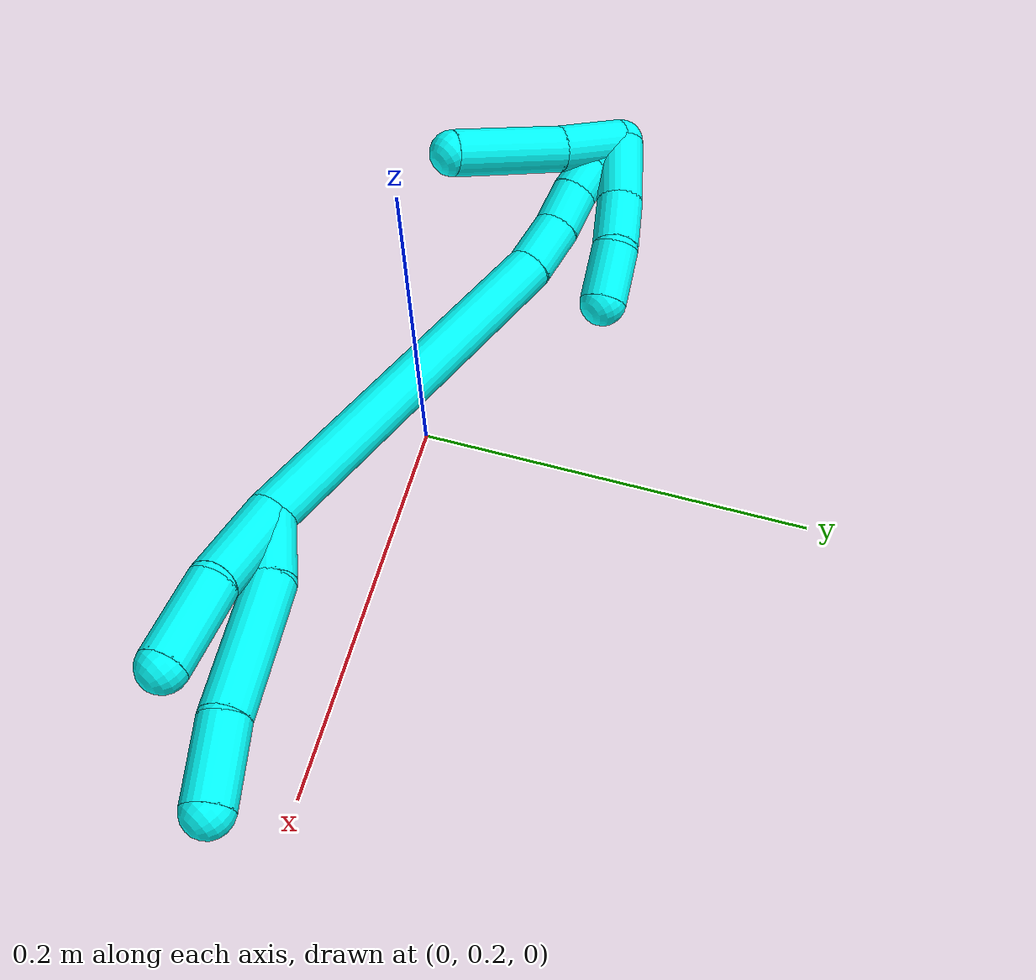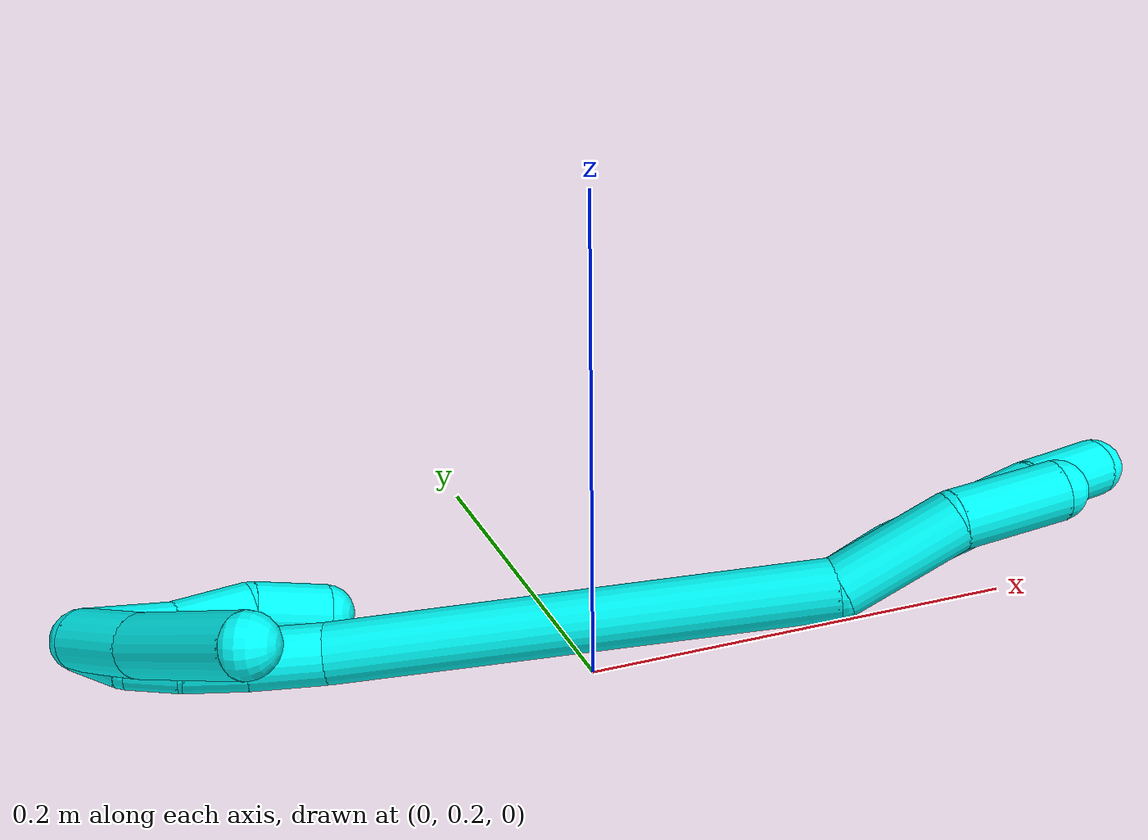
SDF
<sdf version="1.7">
 <world name="default">
  <model name="3">
   <static>0</static>
   <link name="3">
    <collision name="collision-cylinder-e_1_2_8">
     <pose>0.009853 -0.009738 -0.012015 2.46047 0.567235 1.37664</pose>
     <geometry><cylinder><radius>0.0125</radius><length>0.036675</length></cylinder></geometry>
     <surface>
      <friction><ode><mu>1.16</mu><mu2>1.16</mu2><slip1>0</slip1><slip2>0</slip2></ode></friction>
      <contact><ode><kp>1e+06</kp><kd>1</kd><max_vel>0</max_vel><min_depth>0.001</min_depth></ode></contact>
     </surface>
    </collision>
    <visual name="visual-cylinder-e_1_2_8">
     <pose>0.009853 -0.009738 -0.012015 2.46047 0.567235 1.37664</pose>
     <geometry><cylinder><radius>0.0125</radius><length>0.036675</length></cylinder></geometry>
     <material><ambient>0.003922 1 0.996078 1</ambient></material>
    </visual>
    <collision name="collision-cylinder-e_2_8_9">
     <pose>0.031363 -0.035889 -0.0542 2.64337 0.327213 1.15123</pose>
     <geometry><cylinder><radius>0.0125</radius><length>0.072542</length></cylinder></geometry>
     <surface>
      <friction><ode><mu>1.16</mu><mu2>1.16</mu2><slip1>0</slip1><slip2>0</slip2></ode></friction>
      <contact><ode><kp>1e+06</kp><kd>1</kd><max_vel>0</max_vel><min_depth>0.001</min_depth></ode></contact>
     </surface>
    </collision>
    <visual name="visual-cylinder-e_2_8_9">
     <pose>0.031363 -0.035889 -0.0542 2.64337 0.327213 1.15123</pose>
     <geometry><cylinder><radius>0.0125</radius><length>0.072542</length></cylinder></geometry>
     <material><ambient>0.003922 1 0.996078 1</ambient></material>
    </visual>
    <collision name="collision-cylinder-e_3_9_6">
     <pose>0.053083 -0.060146 -0.100279 2.68353 0.51607 1.69456</pose>
     <geometry><cylinder><radius>0.0125</radius><length>0.040783</length></cylinder></geometry>
     <surface>
      <friction><ode><mu>1.16</mu><mu2>1.16</mu2><slip1>0</slip1><slip2>0</slip2></ode></friction>
      <contact><ode><kp>1e+06</kp><kd>1</kd><max_vel>0</max_vel><min_depth>0.001</min_depth></ode></contact>
     </surface>
    </collision>
    <visual name="visual-cylinder-e_3_9_6">
     <pose>0.053083 -0.060146 -0.100279 2.68353 0.51607 1.69456</pose>
     <geometry><cylinder><radius>0.0125</radius><length>0.040783</length></cylinder></geometry>
     <material><ambient>0.003922 1 0.996078 1</ambient></material>
    </visual>
    <collision name="collision-cylinder-e_1_2_10">
     <pose>0.000109 -0.013498 -0.02346 2.61948 0.004041 0.015127</pose>
     <geometry><cylinder><radius>0.0125</radius><length>0.054133</length></cylinder></geometry>
     <surface>
      <friction><ode><mu>1.16</mu><mu2>1.16</mu2><slip1>0</slip1><slip2>0</slip2></ode></friction>
      <contact><ode><kp>1e+06</kp><kd>1</kd><max_vel>0</max_vel><min_depth>0.001</min_depth></ode></contact>
     </surface>
    </collision>
    <visual name="visual-cylinder-e_1_2_10">
     <pose>0.000109 -0.013498 -0.02346 2.61948 0.004041 0.015127</pose>
     <geometry><cylinder><radius>0.0125</radius><length>0.054133</length></cylinder></geometry>
     <material><ambient>0.003922 1 0.996078 1</ambient></material>
    </visual>
    <collision name="collision-cylinder-e_2_10_5">
     <pose>0.005231 -0.034247 -0.068092 2.81167 0.220344 1.17298</pose>
     <geometry><cylinder><radius>0.0125</radius><length>0.045867</length></cylinder></geometry>
     <surface>
      <friction><ode><mu>1.16</mu><mu2>1.16</mu2><slip1>0</slip1><slip2>0</slip2></ode></friction>
      <contact><ode><kp>1e+06</kp><kd>1</kd><max_vel>0</max_vel><min_depth>0.001</min_depth></ode></contact>
     </surface>
    </collision>
    <visual name="visual-cylinder-e_2_10_5">
     <pose>0.005231 -0.034247 -0.068092 2.81167 0.220344 1.17298</pose>
     <geometry><cylinder><radius>0.0125</radius><length>0.045867</length></cylinder></geometry>
     <material><ambient>0.003922 1 0.996078 1</ambient></material>
    </visual>
    <collision name="collision-cylinder-e_1_2_11">
     <pose>-0.003145 0.012503 0.101319 -0.122786 -0.030802 0.001894</pose>
     <geometry><cylinder><radius>0.0125</radius><length>0.204272</length></cylinder></geometry>
     <surface>
      <friction><ode><mu>1.16</mu><mu2>1.16</mu2><slip1>0</slip1><slip2>0</slip2></ode></friction>
      <contact><ode><kp>1e+06</kp><kd>1</kd><max_vel>0</max_vel><min_depth>0.001</min_depth></ode></contact>
     </surface>
    </collision>
    <visual name="visual-cylinder-e_1_2_11">
     <pose>-0.003145 0.012503 0.101319 -0.122786 -0.030802 0.001894</pose>
     <geometry><cylinder><radius>0.0125</radius><length>0.204272</length></cylinder></geometry>
     <material><ambient>0.003922 1 0.996078 1</ambient></material>
    </visual>
    <collision name="collision-cylinder-e_2_11_12">
     <pose>-0.009519 0.02674 0.217326 -0.11744 -0.214892 0.012682</pose>
     <geometry><cylinder><radius>0.0125</radius><length>0.030277</length></cylinder></geometry>
     <surface>
      <friction><ode><mu>1.16</mu><mu2>1.16</mu2><slip1>0</slip1><slip2>0</slip2></ode></friction>
      <contact><ode><kp>1e+06</kp><kd>1</kd><max_vel>0</max_vel><min_depth>0.001</min_depth></ode></contact>
     </surface>
    </collision>
    <visual name="visual-cylinder-e_2_11_12">
     <pose>-0.009519 0.02674 0.217326 -0.11744 -0.214892 0.012682</pose>
     <geometry><cylinder><radius>0.0125</radius><length>0.030277</length></cylinder></geometry>
     <material><ambient>0.003922 1 0.996078 1</ambient></material>
    </visual>
    <collision name="collision-cylinder-e_3_12_13">
     <pose>-0.017062 0.029513 0.243647 -0.089174 -0.353904 0.015957</pose>
     <geometry><cylinder><radius>0.0125</radius><length>0.024901</length></cylinder></geometry>
     <surface>
      <friction><ode><mu>1.16</mu><mu2>1.16</mu2><slip1>0</slip1><slip2>0</slip2></ode></friction>
      <contact><ode><kp>1e+06</kp><kd>1</kd><max_vel>0</max_vel><min_depth>0.001</min_depth></ode></contact>
     </surface>
    </collision>
    <visual name="visual-cylinder-e_3_12_13">
     <pose>-0.017062 0.029513 0.243647 -0.089174 -0.353904 0.015957</pose>
     <geometry><cylinder><radius>0.0125</radius><length>0.024901</length></cylinder></geometry>
     <material><ambient>0.003922 1 0.996078 1</ambient></material>
    </visual>
    <collision name="collision-cylinder-e_4_13_14">
     <pose>-0.024062 0.030216 0.265089 0.034342 -0.266982 -0.004612</pose>
     <geometry><cylinder><radius>0.0125</radius><length>0.020352</length></cylinder></geometry>
     <surface>
      <friction><ode><mu>1.16</mu><mu2>1.16</mu2><slip1>0</slip1><slip2>0</slip2></ode></friction>
      <contact><ode><kp>1e+06</kp><kd>1</kd><max_vel>0</max_vel><min_depth>0.001</min_depth></ode></contact>
     </surface>
    </collision>
    <visual name="visual-cylinder-e_4_13_14">
     <pose>-0.024062 0.030216 0.265089 0.034342 -0.266982 -0.004612</pose>
     <geometry><cylinder><radius>0.0125</radius><length>0.020352</length></cylinder></geometry>
     <material><ambient>0.003922 1 0.996078 1</ambient></material>
    </visual>
    <collision name="collision-cylinder-e_5_14_1">
     <pose>-0.027897 0.026512 0.28435 0.342194 -0.114228 -0.019758</pose>
     <geometry><cylinder><radius>0.0125</radius><length>0.020199</length></cylinder></geometry>
     <surface>
      <friction><ode><mu>1.16</mu><mu2>1.16</mu2><slip1>0</slip1><slip2>0</slip2></ode></friction>
      <contact><ode><kp>1e+06</kp><kd>1</kd><max_vel>0</max_vel><min_depth>0.001</min_depth></ode></contact>
     </surface>
    </collision>
    <visual name="visual-cylinder-e_5_14_1">
     <pose>-0.027897 0.026512 0.28435 0.342194 -0.114228 -0.019758</pose>
     <geometry><cylinder><radius>0.0125</radius><length>0.020199</length></cylinder></geometry>
     <material><ambient>0.003922 1 0.996078 1</ambient></material>
    </visual>
    <collision name="collision-cylinder-e_1_1_15">
     <pose>-0.037523 0.026095 0.277759 -2.95974 -0.479144 2.42709</pose>
     <geometry><cylinder><radius>0.0125</radius><length>0.036764</length></cylinder></geometry>
     <surface>
      <friction><ode><mu>1.16</mu><mu2>1.16</mu2><slip1>0</slip1><slip2>0</slip2></ode></friction>
      <contact><ode><kp>1e+06</kp><kd>1</kd><max_vel>0</max_vel><min_depth>0.001</min_depth></ode></contact>
     </surface>
    </collision>
    <visual name="visual-cylinder-e_1_1_15">
     <pose>-0.037523 0.026095 0.277759 -2.95974 -0.479144 2.42709</pose>
     <geometry><cylinder><radius>0.0125</radius><length>0.036764</length></cylinder></geometry>
     <material><ambient>0.003922 1 0.996078 1</ambient></material>
    </visual>
    <collision name="collision-cylinder-e_2_15_4">
     <pose>-0.062308 0.032511 0.234852 -3.01331 -0.542009 2.68722</pose>
     <geometry><cylinder><radius>0.0125</radius><length>0.063236</length></cylinder></geometry>
     <surface>
      <friction><ode><mu>1.16</mu><mu2>1.16</mu2><slip1>0</slip1><slip2>0</slip2></ode></friction>
      <contact><ode><kp>1e+06</kp><kd>1</kd><max_vel>0</max_vel><min_depth>0.001</min_depth></ode></contact>
     </surface>
    </collision>
    <visual name="visual-cylinder-e_2_15_4">
     <pose>-0.062308 0.032511 0.234852 -3.01331 -0.542009 2.68722</pose>
     <geometry><cylinder><radius>0.0125</radius><length>0.063236</length></cylinder></geometry>
     <material><ambient>0.003922 1 0.996078 1</ambient></material>
    </visual>
    <collision name="collision-cylinder-e_1_1_16">
     <pose>-0.016935 0.019184 0.280738 2.84718 0.725764 2.39699</pose>
     <geometry><cylinder><radius>0.0125</radius><length>0.036502</length></cylinder></geometry>
     <surface>
      <friction><ode><mu>1.16</mu><mu2>1.16</mu2><slip1>0</slip1><slip2>0</slip2></ode></friction>
      <contact><ode><kp>1e+06</kp><kd>1</kd><max_vel>0</max_vel><min_depth>0.001</min_depth></ode></contact>
     </surface>
    </collision>
    <visual name="visual-cylinder-e_1_1_16">
     <pose>-0.016935 0.019184 0.280738 2.84718 0.725764 2.39699</pose>
     <geometry><cylinder><radius>0.0125</radius><length>0.036502</length></cylinder></geometry>
     <material><ambient>0.003922 1 0.996078 1</ambient></material>
    </visual>
    <collision name="collision-cylinder-e_2_16_17">
     <pose>0.002778 0.0094 0.255005 2.71079 0.499077 1.72275</pose>
     <geometry><cylinder><radius>0.0125</radius><length>0.031759</length></cylinder></geometry>
     <surface>
      <friction><ode><mu>1.16</mu><mu2>1.16</mu2><slip1>0</slip1><slip2>0</slip2></ode></friction>
      <contact><ode><kp>1e+06</kp><kd>1</kd><max_vel>0</max_vel><min_depth>0.001</min_depth></ode></contact>
     </surface>
    </collision>
    <visual name="visual-cylinder-e_2_16_17">
     <pose>0.002778 0.0094 0.255005 2.71079 0.499077 1.72275</pose>
     <geometry><cylinder><radius>0.0125</radius><length>0.031759</length></cylinder></geometry>
     <material><ambient>0.003922 1 0.996078 1</ambient></material>
    </visual>
    <collision name="collision-cylinder-e_3_17_3">
     <pose>0.019341 0.002258 0.229306 3.04064 0.600127 2.8179</pose>
     <geometry><cylinder><radius>0.0125</radius><length>0.031739</length></cylinder></geometry>
     <surface>
      <friction><ode><mu>1.16</mu><mu2>1.16</mu2><slip1>0</slip1><slip2>0</slip2></ode></friction>
      <contact><ode><kp>1e+06</kp><kd>1</kd><max_vel>0</max_vel><min_depth>0.001</min_depth></ode></contact>
     </surface>
    </collision>
    <visual name="visual-cylinder-e_3_17_3">
     <pose>0.019341 0.002258 0.229306 3.04064 0.600127 2.8179</pose>
     <geometry><cylinder><radius>0.0125</radius><length>0.031739</length></cylinder></geometry>
     <material><ambient>0.003922 1 0.996078 1</ambient></material>
    </visual>
    <collision name="collision-sphere-3">
     <pose>0.028303 0.000938 0.216277 0 -0 0</pose>
     <geometry><sphere><radius>0.0125</radius></sphere></geometry>
     <surface>
      <friction><ode><mu>1.16</mu><mu2>1.16</mu2><slip1>0</slip1><slip2>0</slip2></ode></friction>
      <contact><ode><kp>1e+06</kp><kd>1</kd><max_vel>0</max_vel><min_depth>0.001</min_depth></ode></contact>
     </surface>
    </collision>
    <visual name="visual-sphere-3">
     <pose>0.028303 0.000938 0.216277 0 -0 0</pose>
     <geometry><sphere><radius>0.0125</radius></sphere></geometry>
     <material><ambient>0.003922 1 0.996078 1</ambient></material>
    </visual>
    <collision name="collision-sphere-17">
     <pose>0.010378 0.003578 0.242336 0 -0 0</pose>
     <geometry><sphere><radius>0.0125</radius></sphere></geometry>
     <surface>
      <friction><ode><mu>1.16</mu><mu2>1.16</mu2><slip1>0</slip1><slip2>0</slip2></ode></friction>
      <contact><ode><kp>1e+06</kp><kd>1</kd><max_vel>0</max_vel><min_depth>0.001</min_depth></ode></contact>
     </surface>
    </collision>
    <visual name="visual-sphere-17">
     <pose>0.010378 0.003578 0.242336 0 -0 0</pose>
     <geometry><sphere><radius>0.0125</radius></sphere></geometry>
     <material><ambient>0.003922 1 0.996078 1</ambient></material>
    </visual>
    <collision name="collision-sphere-16">
     <pose>-0.004822 0.015223 0.267674 0 -0 0</pose>
     <geometry><sphere><radius>0.0125</radius></sphere></geometry>
     <surface>
      <friction><ode><mu>1.16</mu><mu2>1.16</mu2><slip1>0</slip1><slip2>0</slip2></ode></friction>
      <contact><ode><kp>1e+06</kp><kd>1</kd><max_vel>0</max_vel><min_depth>0.001</min_depth></ode></contact>
     </surface>
    </collision>
    <visual name="visual-sphere-16">
     <pose>-0.004822 0.015223 0.267674 0 -0 0</pose>
     <geometry><sphere><radius>0.0125</radius></sphere></geometry>
     <material><ambient>0.003922 1 0.996078 1</ambient></material>
    </visual>
    <collision name="collision-sphere-4">
     <pose>-0.078618 0.035976 0.207989 0 -0 0</pose>
     <geometry><sphere><radius>0.0125</radius></sphere></geometry>
     <surface>
      <friction><ode><mu>1.16</mu><mu2>1.16</mu2><slip1>0</slip1><slip2>0</slip2></ode></friction>
      <contact><ode><kp>1e+06</kp><kd>1</kd><max_vel>0</max_vel><min_depth>0.001</min_depth></ode></contact>
     </surface>
    </collision>
    <visual name="visual-sphere-4">
     <pose>-0.078618 0.035976 0.207989 0 -0 0</pose>
     <geometry><sphere><radius>0.0125</radius></sphere></geometry>
     <material><ambient>0.003922 1 0.996078 1</ambient></material>
    </visual>
    <collision name="collision-sphere-15">
     <pose>-0.045998 0.029045 0.261716 0 -0 0</pose>
     <geometry><sphere><radius>0.0125</radius></sphere></geometry>
     <surface>
      <friction><ode><mu>1.16</mu><mu2>1.16</mu2><slip1>0</slip1><slip2>0</slip2></ode></friction>
      <contact><ode><kp>1e+06</kp><kd>1</kd><max_vel>0</max_vel><min_depth>0.001</min_depth></ode></contact>
     </surface>
    </collision>
    <visual name="visual-sphere-15">
     <pose>-0.045998 0.029045 0.261716 0 -0 0</pose>
     <geometry><sphere><radius>0.0125</radius></sphere></geometry>
     <material><ambient>0.003922 1 0.996078 1</ambient></material>
    </visual>
    <collision name="collision-sphere-1">
     <pose>-0.029048 0.023145 0.293802 0 -0 0</pose>
     <geometry><sphere><radius>0.0125</radius></sphere></geometry>
     <surface>
      <friction><ode><mu>1.16</mu><mu2>1.16</mu2><slip1>0</slip1><slip2>0</slip2></ode></friction>
      <contact><ode><kp>1e+06</kp><kd>1</kd><max_vel>0</max_vel><min_depth>0.001</min_depth></ode></contact>
     </surface>
    </collision>
    <visual name="visual-sphere-1">
     <pose>-0.029048 0.023145 0.293802 0 -0 0</pose>
     <geometry><sphere><radius>0.0125</radius></sphere></geometry>
     <material><ambient>0.003922 1 0.996078 1</ambient></material>
    </visual>
    <collision name="collision-sphere-14">
     <pose>-0.026746 0.029879 0.274899 0 -0 0</pose>
     <geometry><sphere><radius>0.0125</radius></sphere></geometry>
     <surface>
      <friction><ode><mu>1.16</mu><mu2>1.16</mu2><slip1>0</slip1><slip2>0</slip2></ode></friction>
      <contact><ode><kp>1e+06</kp><kd>1</kd><max_vel>0</max_vel><min_depth>0.001</min_depth></ode></contact>
     </surface>
    </collision>
    <visual name="visual-sphere-14">
     <pose>-0.026746 0.029879 0.274899 0 -0 0</pose>
     <geometry><sphere><radius>0.0125</radius></sphere></geometry>
     <material><ambient>0.003922 1 0.996078 1</ambient></material>
    </visual>
    <collision name="collision-sphere-13">
     <pose>-0.021377 0.030553 0.255279 0 -0 0</pose>
     <geometry><sphere><radius>0.0125</radius></sphere></geometry>
     <surface>
      <friction><ode><mu>1.16</mu><mu2>1.16</mu2><slip1>0</slip1><slip2>0</slip2></ode></friction>
      <contact><ode><kp>1e+06</kp><kd>1</kd><max_vel>0</max_vel><min_depth>0.001</min_depth></ode></contact>
     </surface>
    </collision>
    <visual name="visual-sphere-13">
     <pose>-0.021377 0.030553 0.255279 0 -0 0</pose>
     <geometry><sphere><radius>0.0125</radius></sphere></geometry>
     <material><ambient>0.003922 1 0.996078 1</ambient></material>
    </visual>
    <collision name="collision-sphere-12">
     <pose>-0.012747 0.028473 0.232015 0 -0 0</pose>
     <geometry><sphere><radius>0.0125</radius></sphere></geometry>
     <surface>
      <friction><ode><mu>1.16</mu><mu2>1.16</mu2><slip1>0</slip1><slip2>0</slip2></ode></friction>
      <contact><ode><kp>1e+06</kp><kd>1</kd><max_vel>0</max_vel><min_depth>0.001</min_depth></ode></contact>
     </surface>
    </collision>
    <visual name="visual-sphere-12">
     <pose>-0.012747 0.028473 0.232015 0 -0 0</pose>
     <geometry><sphere><radius>0.0125</radius></sphere></geometry>
     <material><ambient>0.003922 1 0.996078 1</ambient></material>
    </visual>
    <collision name="collision-sphere-11">
     <pose>-0.006291 0.025007 0.202638 0 -0 0</pose>
     <geometry><sphere><radius>0.0125</radius></sphere></geometry>
     <surface>
      <friction><ode><mu>1.16</mu><mu2>1.16</mu2><slip1>0</slip1><slip2>0</slip2></ode></friction>
      <contact><ode><kp>1e+06</kp><kd>1</kd><max_vel>0</max_vel><min_depth>0.001</min_depth></ode></contact>
     </surface>
    </collision>
    <visual name="visual-sphere-11">
     <pose>-0.006291 0.025007 0.202638 0 -0 0</pose>
     <geometry><sphere><radius>0.0125</radius></sphere></geometry>
     <material><ambient>0.003922 1 0.996078 1</ambient></material>
    </visual>
    <collision name="collision-sphere-8">
     <pose>0.019705 -0.019476 -0.024029 0 -0 0</pose>
     <geometry><sphere><radius>0.0125</radius></sphere></geometry>
     <surface>
      <friction><ode><mu>1.16</mu><mu2>1.16</mu2><slip1>0</slip1><slip2>0</slip2></ode></friction>
      <contact><ode><kp>1e+06</kp><kd>1</kd><max_vel>0</max_vel><min_depth>0.001</min_depth></ode></contact>
     </surface>
    </collision>
    <visual name="visual-sphere-8">
     <pose>0.019705 -0.019476 -0.024029 0 -0 0</pose>
     <geometry><sphere><radius>0.0125</radius></sphere></geometry>
     <material><ambient>0.003922 1 0.996078 1</ambient></material>
    </visual>
    <collision name="collision-sphere-2">
     <geometry><sphere><radius>0.0125</radius></sphere></geometry>
     <surface>
      <friction><ode><mu>1.16</mu><mu2>1.16</mu2><slip1>0</slip1><slip2>0</slip2></ode></friction>
      <contact><ode><kp>1e+06</kp><kd>1</kd><max_vel>0</max_vel><min_depth>0.001</min_depth></ode></contact>
     </surface>
    </collision>
    <visual name="visual-sphere-2">
     <geometry><sphere><radius>0.0125</radius></sphere></geometry>
     <material><ambient>0.003922 1 0.996078 1</ambient></material>
    </visual>
    <collision name="collision-sphere-9">
     <pose>0.043021 -0.052303 -0.084372 0 -0 0</pose>
     <geometry><sphere><radius>0.0125</radius></sphere></geometry>
     <surface>
      <friction><ode><mu>1.16</mu><mu2>1.16</mu2><slip1>0</slip1><slip2>0</slip2></ode></friction>
      <contact><ode><kp>1e+06</kp><kd>1</kd><max_vel>0</max_vel><min_depth>0.001</min_depth></ode></contact>
     </surface>
    </collision>
    <visual name="visual-sphere-9">
     <pose>0.043021 -0.052303 -0.084372 0 -0 0</pose>
     <geometry><sphere><radius>0.0125</radius></sphere></geometry>
     <material><ambient>0.003922 1 0.996078 1</ambient></material>
    </visual>
    <collision name="collision-sphere-6">
     <pose>0.063146 -0.067988 -0.116187 0 -0 0</pose>
     <geometry><sphere><radius>0.0125</radius></sphere></geometry>
     <surface>
      <friction><ode><mu>1.16</mu><mu2>1.16</mu2><slip1>0</slip1><slip2>0</slip2></ode></friction>
      <contact><ode><kp>1e+06</kp><kd>1</kd><max_vel>0</max_vel><min_depth>0.001</min_depth></ode></contact>
     </surface>
    </collision>
    <visual name="visual-sphere-6">
     <pose>0.063146 -0.067988 -0.116187 0 -0 0</pose>
     <geometry><sphere><radius>0.0125</radius></sphere></geometry>
     <material><ambient>0.003922 1 0.996078 1</ambient></material>
    </visual>
    <collision name="collision-sphere-10">
     <pose>0.000219 -0.026997 -0.04692 0 -0 0</pose>
     <geometry><sphere><radius>0.0125</radius></sphere></geometry>
     <surface>
      <friction><ode><mu>1.16</mu><mu2>1.16</mu2><slip1>0</slip1><slip2>0</slip2></ode></friction>
      <contact><ode><kp>1e+06</kp><kd>1</kd><max_vel>0</max_vel><min_depth>0.001</min_depth></ode></contact>
     </surface>
    </collision>
    <visual name="visual-sphere-10">
     <pose>0.000219 -0.026997 -0.04692 0 -0 0</pose>
     <geometry><sphere><radius>0.0125</radius></sphere></geometry>
     <material><ambient>0.003922 1 0.996078 1</ambient></material>
    </visual>
    <collision name="collision-sphere-5">
     <pose>0.010244 -0.041497 -0.089264 0 -0 0</pose>
     <geometry><sphere><radius>0.0125</radius></sphere></geometry>
     <surface>
      <friction><ode><mu>1.16</mu><mu2>1.16</mu2><slip1>0</slip1><slip2>0</slip2></ode></friction>
      <contact><ode><kp>1e+06</kp><kd>1</kd><max_vel>0</max_vel><min_depth>0.001</min_depth></ode></contact>
     </surface>
    </collision>
    <visual name="visual-sphere-5">
     <pose>0.010244 -0.041497 -0.089264 0 -0 0</pose>
     <geometry><sphere><radius>0.0125</radius></sphere></geometry>
     <material><ambient>0.003922 1 0.996078 1</ambient></material>
    </visual>
    <inertial>
     <pose>-0.003463 0.00216 0.109751 0 -0 0</pose>
     <mass>0.75</mass>
     <inertia><ixx>0.000805</ixx><ixy>0</ixy><ixz>0</ixz><iyy>0.0008</iyy><iyz>0</iyz><izz>-5.1e-05</izz></inertia>
    </inertial>
   </link>
   <pose>0.084158 0.151323 0.044743 -1.65244 0.695955 1.03665</pose>
  </model>
 </world>
</sdf>
